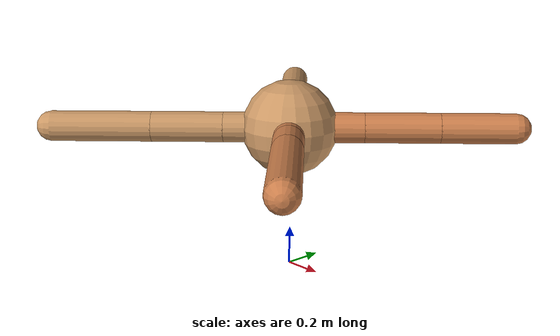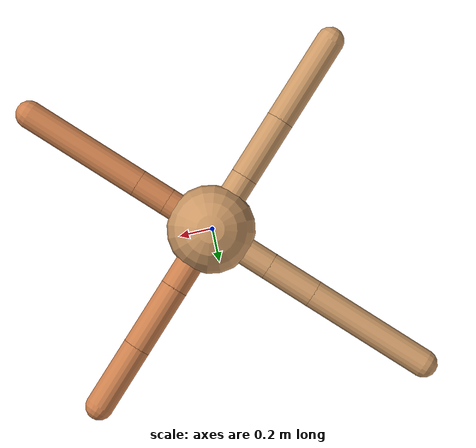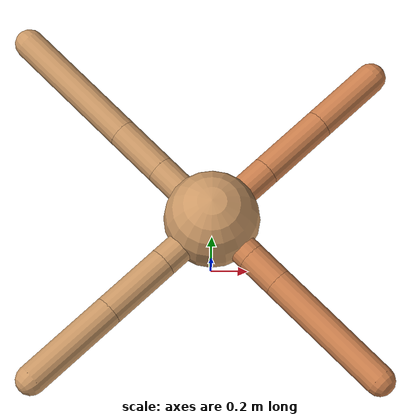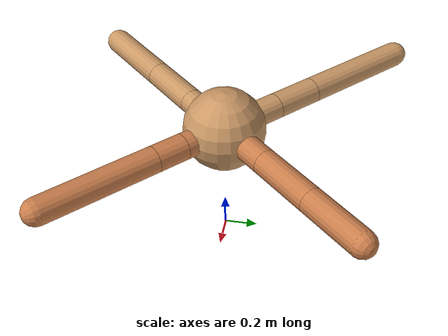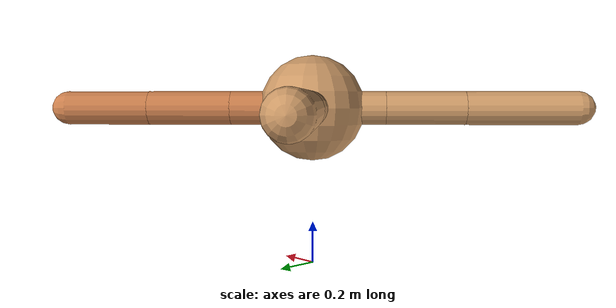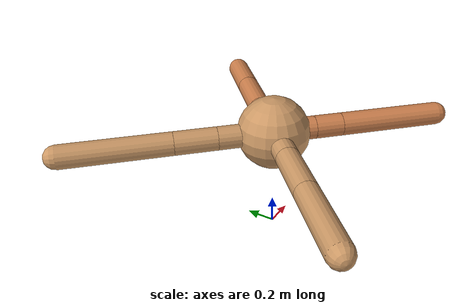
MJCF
<mujoco model="ant">
  <compiler angle="degree" coordinate="local" inertiafromgeom="true" />
  <option integrator="RK4" timestep="0.01" />
  <custom>
    <numeric data="0.0 0.0 0.55 1.0 0.0 0.0 0.0 0.0 1.0 0.0 -1.0 0.0 -1.0 0.0 1.0" name="init_qpos" />
  </custom>
  <default>
    <joint armature="1" damping="1" limited="true" />
    <geom conaffinity="0" condim="3" density="5.0" friction="1.5 0.1 0.1" margin="0.01" rgba="0.8 0.6 0.4 1" />
  </default>
  <worldbody>
    <body name="torso" pos="0 0 0.75">
      <geom name="torso_geom" pos="0 0 0" size="0.25" type="sphere" />

      <body name="front_left_leg" pos="0 0 0">
        <geom fromto="0.0 0.0 0.0 0.2745851160037302 0.2745851160037302 0.0" name="aux_1_geom" size="0.08" type="capsule" rgba=".8 .5 .3 1" />
        <body name="aux_1" pos="0.2745851160037302 0.2745851160037302 0.0">
          <joint axis="0 0 1" name="hip_1" pos="0.0 0.0 0.0" range="-40 40" type="hinge" />
          <geom fromto="0.0 0.0 0.0 0.2775348407299886 0.2775348407299886 0.0" name="left_leg_geom" size="0.08" type="capsule" rgba=".8 .5 .3 1" />
          <body pos="0.2775348407299886 0.2775348407299886 0.0" name="front_left_foot">
            <joint axis="-1 1 0" name="ankle_1" pos="0.0 0.0 0.0" range="30 100" type="hinge" />
            <geom fromto="0.0 0.0 0.0 0.276645625727345 0.276645625727345 0.0" name="left_ankle_geom" size="0.08" type="capsule" rgba=".8 .5 .3 1" />
          </body>
        </body>
      </body>
      <body name="front_right_leg" pos="0 0 0">
        <geom fromto="0.0 0.0 0.0 -0.27281006596367513 0.27281006596367513 0.0" name="aux_2_geom" size="0.08" type="capsule" />
        <body name="aux_2" pos="-0.27281006596367513 0.27281006596367513 0.0">
          <joint axis="0 0 1" name="hip_2" pos="0.0 0.0 0.0" range="-40 40" type="hinge" />
          <geom fromto="0.0 0.0 0.0 -0.2048083560170738 0.2048083560170738 0.0" name="right_leg_geom" size="0.08" type="capsule" />
          <body pos="-0.2048083560170738 0.2048083560170738 0.0" name="front_right_foot">
            <joint axis="1 1 0" name="ankle_2" pos="0.0 0.0 0.0" range="-100 -30" type="hinge" />
            <geom fromto="0.0 0.0 0.0 -0.5169247004941298 0.5169247004941298 0.0" name="right_ankle_geom" size="0.08" type="capsule" />
          </body>
        </body>
      </body>
      <body name="left_back_leg" pos="0 0 0">
        <geom fromto="0.0 0.0 0.0 -0.2455422379759265 -0.2455422379759265 0.0" name="aux_3_geom" size="0.08" type="capsule" />
        <body name="aux_3" pos="-0.2455422379759265 -0.2455422379759265 0.0">
          <joint axis="0 0 1" name="hip_3" pos="0.0 0.0 0.0" range="-40 40" type="hinge" />
          <geom fromto="0.0 0.0 0.0 -0.2653440271945474 -0.2653440271945474 0.0" name="back_leg_geom" size="0.08" type="capsule" />
          <body pos="-0.2653440271945474 -0.2653440271945474 0.0" name="left_back_foot">
            <joint axis="-1 1 0" name="ankle_3" pos="0.0 0.0 0.0" range="-100 -30" type="hinge" />
            <geom fromto="0.0 0.0 0.0 -0.371994155154747 -0.371994155154747 0.0" name="third_ankle_geom" size="0.08" type="capsule" />
          </body>
        </body>
      </body>
      <body name="right_back_leg" pos="0 0 0">
        <geom fromto="0.0 0.0 0.0 0.20527769175659444 -0.20527769175659444 0.0" name="aux_4_geom" size="0.08" type="capsule" rgba=".8 .5 .3 1" />
        <body name="aux_4" pos="0.20527769175659444 -0.20527769175659444 0.0">
          <joint axis="0 0 1" name="hip_4" pos="0.0 0.0 0.0" range="-40 40" type="hinge" />
          <geom fromto="0.0 0.0 0.0 0.1363997576526422 -0.1363997576526422 0.0" name="rightback_leg_geom" size="0.08" type="capsule" rgba=".8 .5 .3 1" />
          <body pos="0.1363997576526422 -0.1363997576526422 0.0" name="right_back_foot">
            <joint axis="1 1 0" name="ankle_4" pos="0.0 0.0 0.0" range="30 100" type="hinge" />
            <geom fromto="0.0 0.0 0.0 0.5091590588713122 -0.5091590588713122 0.0" name="fourth_ankle_geom" size="0.08" type="capsule" rgba=".8 .5 .3 1" />
          </body>
        </body>
      </body>
    </body>
  </worldbody>
  <actuator>
    <motor ctrllimited="true" ctrlrange="-1.0 1.0" joint="hip_4" gear="150" />
    <motor ctrllimited="true" ctrlrange="-1.0 1.0" joint="ankle_4" gear="150" />
    <motor ctrllimited="true" ctrlrange="-1.0 1.0" joint="hip_1" gear="150" />
    <motor ctrllimited="true" ctrlrange="-1.0 1.0" joint="ankle_1" gear="150" />
    <motor ctrllimited="true" ctrlrange="-1.0 1.0" joint="hip_2" gear="150" />
    <motor ctrllimited="true" ctrlrange="-1.0 1.0" joint="ankle_2" gear="150" />
    <motor ctrllimited="true" ctrlrange="-1.0 1.0" joint="hip_3" gear="150" />
    <motor ctrllimited="true" ctrlrange="-1.0 1.0" joint="ankle_3" gear="150" />
  </actuator>
</mujoco>
